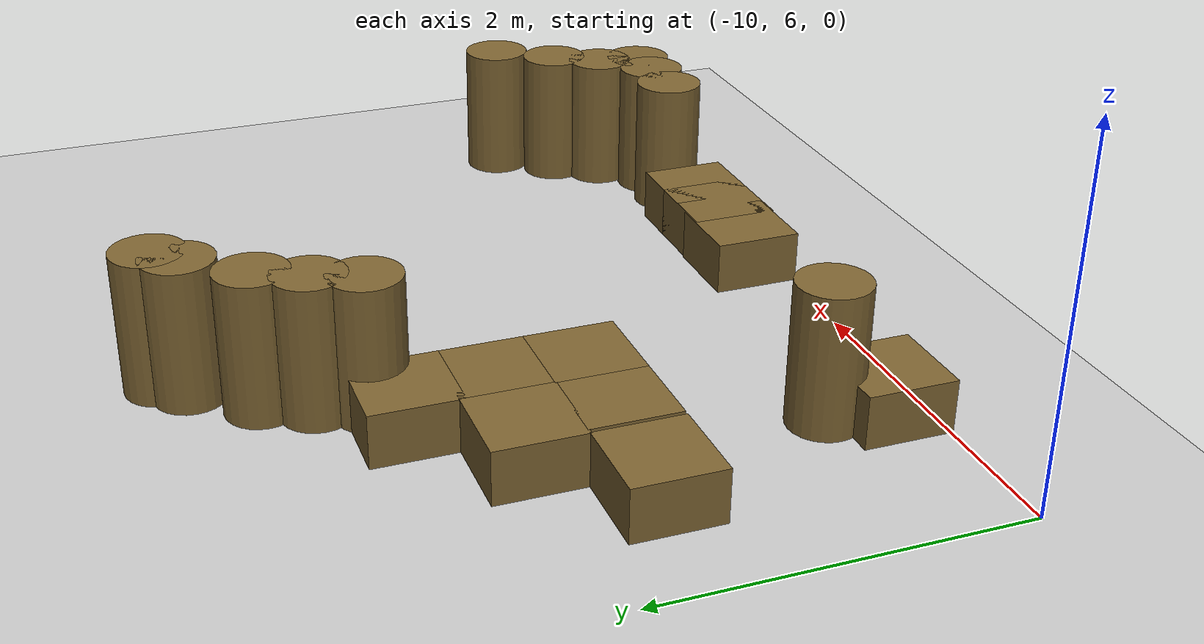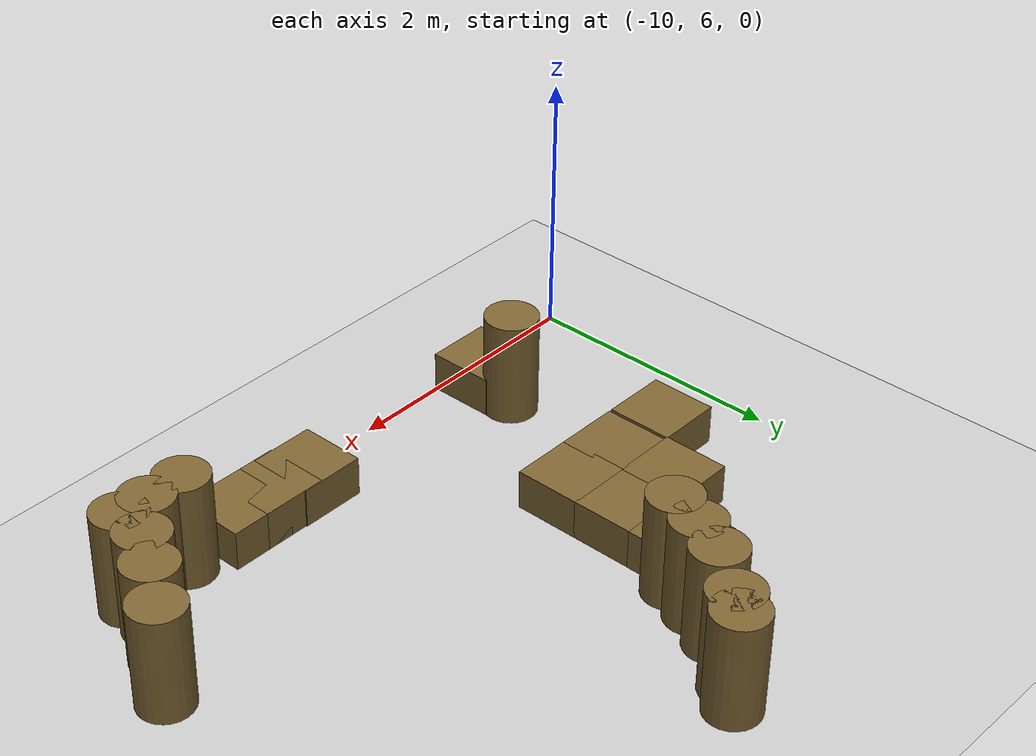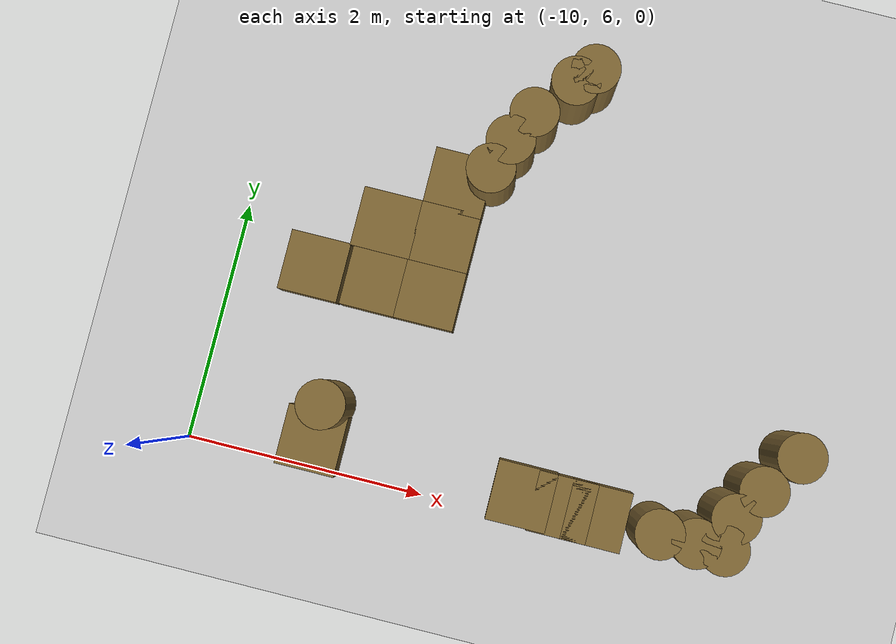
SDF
<sdf version="1.7">
 <world name="default">
  <model name="ground_plane">
   <static>1</static>
   <link name="link">
    <collision name="collision">
     <geometry><plane><normal>0 0 1</normal><size>100 100</size></plane></geometry>
     <surface><friction><ode><mu>100</mu><mu2>50</mu2></ode></friction></surface>
    </collision>
    <visual name="visual">
     <cast_shadows>0</cast_shadows>
     <geometry><plane><normal>0 0 1</normal><size>100 100</size></plane></geometry>
     <material>
      <script><uri>file://media/materials/scripts/gazebo.material</uri><name>Gazebo/Grey</name></script>
     </material>
    </visual>
   </link>
  </model>
  <model name="mini_box_clone_clone_2_clone">
   <link name="link">
    <inertial>
     <mass>1</mass>
     <inertia>
      <ixx>0.166667</ixx>
      <ixy>0</ixy>
      <ixz>0</ixz>
      <iyy>0.166667</iyy>
      <iyz>0</iyz>
      <izz>0.166667</izz>
     </inertia>
    </inertial>
    <visual name="visual">
     <geometry><box><size>0.5 0.5 0.3</size></box></geometry>
     <material>
      <script><name>Gazebo/Grey</name><uri>file://media/materials/scripts/gazebo.material</uri></script>
      <shader type="vertex"><normal_map>__default__</normal_map></shader>
      <ambient>0.5 0.4 0.2 1</ambient>
      <diffuse>0.7 0.7 0.7 1</diffuse>
      <specular>0.01 0.01 0.01 1</specular>
      <emissive>0 0 0 1</emissive>
     </material>
    </visual>
    <collision name="collision">
     <geometry><box><size>0.5 0.5 0.3</size></box></geometry>
     <surface>
      <friction>
       <ode><mu>1</mu><mu2>1</mu2><fdir1>0 0 0</fdir1><slip1>0</slip1><slip2>0</slip2></ode>
       <torsional>
        <coefficient>1</coefficient>
        <patch_radius>0</patch_radius>
        <surface_radius>0</surface_radius>
        <use_patch_radius>1</use_patch_radius>
        <ode><slip>0</slip></ode>
       </torsional>
      </friction>
      <bounce><restitution_coefficient>0</restitution_coefficient><threshold>1e+06</threshold></bounce>
      <contact>
       <collide_without_contact>0</collide_without_contact>
       <collide_without_contact_bitmask>1</collide_without_contact_bitmask>
       <collide_bitmask>1</collide_bitmask>
       <ode>
        <soft_cfm>0</soft_cfm>
        <soft_erp>0.2</soft_erp>
        <kp>1e+13</kp>
        <kd>1</kd>
        <max_vel>0.01</max_vel>
        <min_depth>0</min_depth>
       </ode>
       <bullet>
        <split_impulse>1</split_impulse>
        <split_impulse_penetration_threshold>-0.01</split_impulse_penetration_threshold>
        <soft_cfm>0</soft_cfm>
        <soft_erp>0.2</soft_erp>
        <kp>1e+13</kp>
        <kd>1</kd>
       </bullet>
      </contact>
     </surface>
    </collision>
   </link>
   <static>1</static>
   <pose>-7.18928 6.21457 0.15 0 -0 0</pose>
  </model>
  <model name="mini_cylinder_0_clone_0_clone_3">
   <link name="link">
    <inertial>
     <mass>1</mass>
     <inertia><ixx>0.145833</ixx><ixy>0</ixy><ixz>0</ixz><iyy>0.145833</iyy><iyz>0</iyz><izz>0.125</izz></inertia>
    </inertial>
    <visual name="visual">
     <geometry><cylinder><radius>0.2</radius><length>0.8</length></cylinder></geometry>
     <material>
      <script><name>Gazebo/Grey</name><uri>file://media/materials/scripts/gazebo.material</uri></script>
      <shader type="vertex"><normal_map>__default__</normal_map></shader>
      <ambient>0.5 0.4 0.2 1</ambient>
      <diffuse>0.7 0.7 0.7 1</diffuse>
      <specular>0.01 0.01 0.01 1</specular>
      <emissive>0 0 0 1</emissive>
     </material>
    </visual>
    <collision name="collision">
     <geometry><cylinder><radius>0.2</radius><length>0.8</length></cylinder></geometry>
     <surface>
      <friction>
       <ode><mu>1</mu><mu2>1</mu2><fdir1>0 0 0</fdir1><slip1>0</slip1><slip2>0</slip2></ode>
       <torsional>
        <coefficient>1</coefficient>
        <patch_radius>0</patch_radius>
        <surface_radius>0</surface_radius>
        <use_patch_radius>1</use_patch_radius>
        <ode><slip>0</slip></ode>
       </torsional>
      </friction>
      <bounce><restitution_coefficient>0</restitution_coefficient><threshold>1e+06</threshold></bounce>
      <contact>
       <collide_without_contact>0</collide_without_contact>
       <collide_without_contact_bitmask>1</collide_without_contact_bitmask>
       <collide_bitmask>1</collide_bitmask>
       <ode>
        <soft_cfm>0</soft_cfm>
        <soft_erp>0.2</soft_erp>
        <kp>1e+13</kp>
        <kd>1</kd>
        <max_vel>0.01</max_vel>
        <min_depth>0</min_depth>
       </ode>
       <bullet>
        <split_impulse>1</split_impulse>
        <split_impulse_penetration_threshold>-0.01</split_impulse_penetration_threshold>
        <soft_cfm>0</soft_cfm>
        <soft_erp>0.2</soft_erp>
        <kp>1e+13</kp>
        <kd>1</kd>
       </bullet>
      </contact>
     </surface>
    </collision>
   </link>
   <static>1</static>
   <pose>-8.90855 6.55503 0.4 0 -0 0</pose>
  </model>
  <model name="mini_box_clone_clone_3_clone_0_clone_0_clone_11">
   <link name="link">
    <inertial>
     <mass>1</mass>
     <inertia>
      <ixx>0.166667</ixx>
      <ixy>0</ixy>
      <ixz>0</ixz>
      <iyy>0.166667</iyy>
      <iyz>0</iyz>
      <izz>0.166667</izz>
     </inertia>
    </inertial>
    <visual name="visual">
     <geometry><box><size>0.5 0.5 0.3</size></box></geometry>
     <material>
      <script><name>Gazebo/Grey</name><uri>file://media/materials/scripts/gazebo.material</uri></script>
      <shader type="vertex"><normal_map>__default__</normal_map></shader>
      <ambient>0.5 0.4 0.2 1</ambient>
      <diffuse>0.7 0.7 0.7 1</diffuse>
      <specular>0.01 0.01 0.01 1</specular>
      <emissive>0 0 0 1</emissive>
     </material>
    </visual>
    <collision name="collision">
     <geometry><box><size>0.5 0.5 0.3</size></box></geometry>
     <surface>
      <friction>
       <ode><mu>1</mu><mu2>1</mu2><fdir1>0 0 0</fdir1><slip1>0</slip1><slip2>0</slip2></ode>
       <torsional>
        <coefficient>1</coefficient>
        <patch_radius>0</patch_radius>
        <surface_radius>0</surface_radius>
        <use_patch_radius>1</use_patch_radius>
        <ode><slip>0</slip></ode>
       </torsional>
      </friction>
      <bounce><restitution_coefficient>0</restitution_coefficient><threshold>1e+06</threshold></bounce>
      <contact>
       <collide_without_contact>0</collide_without_contact>
       <collide_without_contact_bitmask>1</collide_without_contact_bitmask>
       <collide_bitmask>1</collide_bitmask>
       <ode>
        <soft_cfm>0</soft_cfm>
        <soft_erp>0.2</soft_erp>
        <kp>1e+13</kp>
        <kd>1</kd>
        <max_vel>0.01</max_vel>
        <min_depth>0</min_depth>
       </ode>
       <bullet>
        <split_impulse>1</split_impulse>
        <split_impulse_penetration_threshold>-0.01</split_impulse_penetration_threshold>
        <soft_cfm>0</soft_cfm>
        <soft_erp>0.2</soft_erp>
        <kp>1e+13</kp>
        <kd>1</kd>
       </bullet>
      </contact>
     </surface>
    </collision>
   </link>
   <static>1</static>
   <pose>-8.32128 8.11628 0.15 0 -0 0</pose>
  </model>
  <model name="mini_box_clone_clone_3_clone_0_clone_0_clone_12">
   <link name="link">
    <inertial>
     <mass>1</mass>
     <inertia>
      <ixx>0.166667</ixx>
      <ixy>0</ixy>
      <ixz>0</ixz>
      <iyy>0.166667</iyy>
      <iyz>0</iyz>
      <izz>0.166667</izz>
     </inertia>
    </inertial>
    <visual name="visual">
     <geometry><box><size>0.5 0.5 0.3</size></box></geometry>
     <material>
      <script><name>Gazebo/Grey</name><uri>file://media/materials/scripts/gazebo.material</uri></script>
      <shader type="vertex"><normal_map>__default__</normal_map></shader>
      <ambient>0.5 0.4 0.2 1</ambient>
      <diffuse>0.7 0.7 0.7 1</diffuse>
      <specular>0.01 0.01 0.01 1</specular>
      <emissive>0 0 0 1</emissive>
     </material>
    </visual>
    <collision name="collision">
     <geometry><box><size>0.5 0.5 0.3</size></box></geometry>
     <surface>
      <friction>
       <ode><mu>1</mu><mu2>1</mu2><fdir1>0 0 0</fdir1><slip1>0</slip1><slip2>0</slip2></ode>
       <torsional>
        <coefficient>1</coefficient>
        <patch_radius>0</patch_radius>
        <surface_radius>0</surface_radius>
        <use_patch_radius>1</use_patch_radius>
        <ode><slip>0</slip></ode>
       </torsional>
      </friction>
      <bounce><restitution_coefficient>0</restitution_coefficient><threshold>1e+06</threshold></bounce>
      <contact>
       <collide_without_contact>0</collide_without_contact>
       <collide_without_contact_bitmask>1</collide_without_contact_bitmask>
       <collide_bitmask>1</collide_bitmask>
       <ode>
        <soft_cfm>0</soft_cfm>
        <soft_erp>0.2</soft_erp>
        <kp>1e+13</kp>
        <kd>1</kd>
        <max_vel>0.01</max_vel>
        <min_depth>0</min_depth>
       </ode>
       <bullet>
        <split_impulse>1</split_impulse>
        <split_impulse_penetration_threshold>-0.01</split_impulse_penetration_threshold>
        <soft_cfm>0</soft_cfm>
        <soft_erp>0.2</soft_erp>
        <kp>1e+13</kp>
        <kd>1</kd>
       </bullet>
      </contact>
     </surface>
    </collision>
   </link>
   <static>1</static>
   <pose>-8.32128 7.62502 0.15 0 -0 0</pose>
  </model>
  <model name="mini_box_clone_clone_3_clone_0_clone_0_clone_13">
   <link name="link">
    <inertial>
     <mass>1</mass>
     <inertia>
      <ixx>0.166667</ixx>
      <ixy>0</ixy>
      <ixz>0</ixz>
      <iyy>0.166667</iyy>
      <iyz>0</iyz>
      <izz>0.166667</izz>
     </inertia>
    </inertial>
    <visual name="visual">
     <geometry><box><size>0.5 0.5 0.3</size></box></geometry>
     <material>
      <script><name>Gazebo/Grey</name><uri>file://media/materials/scripts/gazebo.material</uri></script>
      <shader type="vertex"><normal_map>__default__</normal_map></shader>
      <ambient>0.5 0.4 0.2 1</ambient>
      <diffuse>0.7 0.7 0.7 1</diffuse>
      <specular>0.01 0.01 0.01 1</specular>
      <emissive>0 0 0 1</emissive>
     </material>
    </visual>
    <collision name="collision">
     <geometry><box><size>0.5 0.5 0.3</size></box></geometry>
     <surface>
      <friction>
       <ode><mu>1</mu><mu2>1</mu2><fdir1>0 0 0</fdir1><slip1>0</slip1><slip2>0</slip2></ode>
       <torsional>
        <coefficient>1</coefficient>
        <patch_radius>0</patch_radius>
        <surface_radius>0</surface_radius>
        <use_patch_radius>1</use_patch_radius>
        <ode><slip>0</slip></ode>
       </torsional>
      </friction>
      <bounce><restitution_coefficient>0</restitution_coefficient><threshold>1e+06</threshold></bounce>
      <contact>
       <collide_without_contact>0</collide_without_contact>
       <collide_without_contact_bitmask>1</collide_without_contact_bitmask>
       <collide_bitmask>1</collide_bitmask>
       <ode>
        <soft_cfm>0</soft_cfm>
        <soft_erp>0.2</soft_erp>
        <kp>1e+13</kp>
        <kd>1</kd>
        <max_vel>0.01</max_vel>
        <min_depth>0</min_depth>
       </ode>
       <bullet>
        <split_impulse>1</split_impulse>
        <split_impulse_penetration_threshold>-0.01</split_impulse_penetration_threshold>
        <soft_cfm>0</soft_cfm>
        <soft_erp>0.2</soft_erp>
        <kp>1e+13</kp>
        <kd>1</kd>
       </bullet>
      </contact>
     </surface>
    </collision>
   </link>
   <static>1</static>
   <pose>-8.81276 8.11628 0.15 0 -0 0</pose>
  </model>
  <model name="mini_box_clone_clone_3_clone_0_clone_0_clone_14">
   <link name="link">
    <inertial>
     <mass>1</mass>
     <inertia>
      <ixx>0.166667</ixx>
      <ixy>0</ixy>
      <ixz>0</ixz>
      <iyy>0.166667</iyy>
      <iyz>0</iyz>
      <izz>0.166667</izz>
     </inertia>
    </inertial>
    <visual name="visual">
     <geometry><box><size>0.5 0.5 0.3</size></box></geometry>
     <material>
      <script><name>Gazebo/Grey</name><uri>file://media/materials/scripts/gazebo.material</uri></script>
      <shader type="vertex"><normal_map>__default__</normal_map></shader>
      <ambient>0.5 0.4 0.2 1</ambient>
      <diffuse>0.7 0.7 0.7 1</diffuse>
      <specular>0.01 0.01 0.01 1</specular>
      <emissive>0 0 0 1</emissive>
     </material>
    </visual>
    <collision name="collision">
     <geometry><box><size>0.5 0.5 0.3</size></box></geometry>
     <surface>
      <friction>
       <ode><mu>1</mu><mu2>1</mu2><fdir1>0 0 0</fdir1><slip1>0</slip1><slip2>0</slip2></ode>
       <torsional>
        <coefficient>1</coefficient>
        <patch_radius>0</patch_radius>
        <surface_radius>0</surface_radius>
        <use_patch_radius>1</use_patch_radius>
        <ode><slip>0</slip></ode>
       </torsional>
      </friction>
      <bounce><restitution_coefficient>0</restitution_coefficient><threshold>1e+06</threshold></bounce>
      <contact>
       <collide_without_contact>0</collide_without_contact>
       <collide_without_contact_bitmask>1</collide_without_contact_bitmask>
       <collide_bitmask>1</collide_bitmask>
       <ode>
        <soft_cfm>0</soft_cfm>
        <soft_erp>0.2</soft_erp>
        <kp>1e+13</kp>
        <kd>1</kd>
        <max_vel>0.01</max_vel>
        <min_depth>0</min_depth>
       </ode>
       <bullet>
        <split_impulse>1</split_impulse>
        <split_impulse_penetration_threshold>-0.01</split_impulse_penetration_threshold>
        <soft_cfm>0</soft_cfm>
        <soft_erp>0.2</soft_erp>
        <kp>1e+13</kp>
        <kd>1</kd>
       </bullet>
      </contact>
     </surface>
    </collision>
   </link>
   <static>1</static>
   <pose>-8.78019 7.62502 0.15 0 -0 0</pose>
  </model>
  <model name="mini_box_clone_clone_3_clone_0_clone_0_clone_15">
   <link name="link">
    <inertial>
     <mass>1</mass>
     <inertia>
      <ixx>0.166667</ixx>
      <ixy>0</ixy>
      <ixz>0</ixz>
      <iyy>0.166667</iyy>
      <iyz>0</iyz>
      <izz>0.166667</izz>
     </inertia>
    </inertial>
    <visual name="visual">
     <geometry><box><size>0.5 0.5 0.3</size></box></geometry>
     <material>
      <script><name>Gazebo/Grey</name><uri>file://media/materials/scripts/gazebo.material</uri></script>
      <shader type="vertex"><normal_map>__default__</normal_map></shader>
      <ambient>0.5 0.4 0.2 1</ambient>
      <diffuse>0.7 0.7 0.7 1</diffuse>
      <specular>0.01 0.01 0.01 1</specular>
      <emissive>0 0 0 1</emissive>
     </material>
    </visual>
    <collision name="collision">
     <geometry><box><size>0.5 0.5 0.3</size></box></geometry>
     <surface>
      <friction>
       <ode><mu>1</mu><mu2>1</mu2><fdir1>0 0 0</fdir1><slip1>0</slip1><slip2>0</slip2></ode>
       <torsional>
        <coefficient>1</coefficient>
        <patch_radius>0</patch_radius>
        <surface_radius>0</surface_radius>
        <use_patch_radius>1</use_patch_radius>
        <ode><slip>0</slip></ode>
       </torsional>
      </friction>
      <bounce><restitution_coefficient>0</restitution_coefficient><threshold>1e+06</threshold></bounce>
      <contact>
       <collide_without_contact>0</collide_without_contact>
       <collide_without_contact_bitmask>1</collide_without_contact_bitmask>
       <collide_bitmask>1</collide_bitmask>
       <ode>
        <soft_cfm>0</soft_cfm>
        <soft_erp>0.2</soft_erp>
        <kp>1e+13</kp>
        <kd>1</kd>
        <max_vel>0.01</max_vel>
        <min_depth>0</min_depth>
       </ode>
       <bullet>
        <split_impulse>1</split_impulse>
        <split_impulse_penetration_threshold>-0.01</split_impulse_penetration_threshold>
        <soft_cfm>0</soft_cfm>
        <soft_erp>0.2</soft_erp>
        <kp>1e+13</kp>
        <kd>1</kd>
       </bullet>
      </contact>
     </surface>
    </collision>
   </link>
   <static>1</static>
   <pose>-9.30423 7.62502 0.15 0 -0 0</pose>
  </model>
  <model name="mini_box_clone_clone_0_clone_1">
   <link name="link">
    <inertial>
     <mass>1</mass>
     <inertia>
      <ixx>0.166667</ixx>
      <ixy>0</ixy>
      <ixz>0</ixz>
      <iyy>0.166667</iyy>
      <iyz>0</iyz>
      <izz>0.166667</izz>
     </inertia>
    </inertial>
    <visual name="visual">
     <geometry><box><size>0.5 0.5 0.3</size></box></geometry>
     <material>
      <script><name>Gazebo/Grey</name><uri>file://media/materials/scripts/gazebo.material</uri></script>
      <shader type="vertex"><normal_map>__default__</normal_map></shader>
      <ambient>0.5 0.4 0.2 1</ambient>
      <diffuse>0.7 0.7 0.7 1</diffuse>
      <specular>0.01 0.01 0.01 1</specular>
      <emissive>0 0 0 1</emissive>
     </material>
    </visual>
    <collision name="collision">
     <geometry><box><size>0.5 0.5 0.3</size></box></geometry>
     <surface>
      <friction>
       <ode><mu>1</mu><mu2>1</mu2><fdir1>0 0 0</fdir1><slip1>0</slip1><slip2>0</slip2></ode>
       <torsional>
        <coefficient>1</coefficient>
        <patch_radius>0</patch_radius>
        <surface_radius>0</surface_radius>
        <use_patch_radius>1</use_patch_radius>
        <ode><slip>0</slip></ode>
       </torsional>
      </friction>
      <bounce><restitution_coefficient>0</restitution_coefficient><threshold>1e+06</threshold></bounce>
      <contact>
       <collide_without_contact>0</collide_without_contact>
       <collide_without_contact_bitmask>1</collide_without_contact_bitmask>
       <collide_bitmask>1</collide_bitmask>
       <ode>
        <soft_cfm>0</soft_cfm>
        <soft_erp>0.2</soft_erp>
        <kp>1e+13</kp>
        <kd>1</kd>
        <max_vel>0.01</max_vel>
        <min_depth>0</min_depth>
       </ode>
       <bullet>
        <split_impulse>1</split_impulse>
        <split_impulse_penetration_threshold>-0.01</split_impulse_penetration_threshold>
        <soft_cfm>0</soft_cfm>
        <soft_erp>0.2</soft_erp>
        <kp>1e+13</kp>
        <kd>1</kd>
       </bullet>
      </contact>
     </surface>
    </collision>
   </link>
   <static>1</static>
   <pose>-8.96737 6.23592 0.15 0 -0 0</pose>
  </model>
  <model name="mini_box_clone_clone_0_clone_4">
   <link name="link">
    <inertial>
     <mass>1</mass>
     <inertia>
      <ixx>0.166667</ixx>
      <ixy>0</ixy>
      <ixz>0</ixz>
      <iyy>0.166667</iyy>
      <iyz>0</iyz>
      <izz>0.166667</izz>
     </inertia>
    </inertial>
    <visual name="visual">
     <geometry><box><size>0.5 0.5 0.3</size></box></geometry>
     <material>
      <script><name>Gazebo/Grey</name><uri>file://media/materials/scripts/gazebo.material</uri></script>
      <shader type="vertex"><normal_map>__default__</normal_map></shader>
      <ambient>0.5 0.4 0.2 1</ambient>
      <diffuse>0.7 0.7 0.7 1</diffuse>
      <specular>0.01 0.01 0.01 1</specular>
      <emissive>0 0 0 1</emissive>
     </material>
    </visual>
    <collision name="collision">
     <geometry><box><size>0.5 0.5 0.3</size></box></geometry>
     <surface>
      <friction>
       <ode><mu>1</mu><mu2>1</mu2><fdir1>0 0 0</fdir1><slip1>0</slip1><slip2>0</slip2></ode>
       <torsional>
        <coefficient>1</coefficient>
        <patch_radius>0</patch_radius>
        <surface_radius>0</surface_radius>
        <use_patch_radius>1</use_patch_radius>
        <ode><slip>0</slip></ode>
       </torsional>
      </friction>
      <bounce><restitution_coefficient>0</restitution_coefficient><threshold>1e+06</threshold></bounce>
      <contact>
       <collide_without_contact>0</collide_without_contact>
       <collide_without_contact_bitmask>1</collide_without_contact_bitmask>
       <collide_bitmask>1</collide_bitmask>
       <ode>
        <soft_cfm>0</soft_cfm>
        <soft_erp>0.2</soft_erp>
        <kp>1e+13</kp>
        <kd>1</kd>
        <max_vel>0.01</max_vel>
        <min_depth>0</min_depth>
       </ode>
       <bullet>
        <split_impulse>1</split_impulse>
        <split_impulse_penetration_threshold>-0.01</split_impulse_penetration_threshold>
        <soft_cfm>0</soft_cfm>
        <soft_erp>0.2</soft_erp>
        <kp>1e+13</kp>
        <kd>1</kd>
       </bullet>
      </contact>
     </surface>
    </collision>
   </link>
   <static>1</static>
   <pose>-8.32006 8.57869 0.15 0 -0 0</pose>
  </model>
  <model name="mini_box_clone_clone_0_clone_5">
   <link name="link">
    <inertial>
     <mass>1</mass>
     <inertia>
      <ixx>0.166667</ixx>
      <ixy>0</ixy>
      <ixz>0</ixz>
      <iyy>0.166667</iyy>
      <iyz>0</iyz>
      <izz>0.166667</izz>
     </inertia>
    </inertial>
    <visual name="visual">
     <geometry><box><size>0.5 0.5 0.3</size></box></geometry>
     <material>
      <script><name>Gazebo/Grey</name><uri>file://media/materials/scripts/gazebo.material</uri></script>
      <shader type="vertex"><normal_map>__default__</normal_map></shader>
      <ambient>0.5 0.4 0.2 1</ambient>
      <diffuse>0.7 0.7 0.7 1</diffuse>
      <specular>0.01 0.01 0.01 1</specular>
      <emissive>0 0 0 1</emissive>
     </material>
    </visual>
    <collision name="collision">
     <geometry><box><size>0.5 0.5 0.3</size></box></geometry>
     <surface>
      <friction>
       <ode><mu>1</mu><mu2>1</mu2><fdir1>0 0 0</fdir1><slip1>0</slip1><slip2>0</slip2></ode>
       <torsional>
        <coefficient>1</coefficient>
        <patch_radius>0</patch_radius>
        <surface_radius>0</surface_radius>
        <use_patch_radius>1</use_patch_radius>
        <ode><slip>0</slip></ode>
       </torsional>
      </friction>
      <bounce><restitution_coefficient>0</restitution_coefficient><threshold>1e+06</threshold></bounce>
      <contact>
       <collide_without_contact>0</collide_without_contact>
       <collide_without_contact_bitmask>1</collide_without_contact_bitmask>
       <collide_bitmask>1</collide_bitmask>
       <ode>
        <soft_cfm>0</soft_cfm>
        <soft_erp>0.2</soft_erp>
        <kp>1e+13</kp>
        <kd>1</kd>
        <max_vel>0.01</max_vel>
        <min_depth>0</min_depth>
       </ode>
       <bullet>
        <split_impulse>1</split_impulse>
        <split_impulse_penetration_threshold>-0.01</split_impulse_penetration_threshold>
        <soft_cfm>0</soft_cfm>
        <soft_erp>0.2</soft_erp>
        <kp>1e+13</kp>
        <kd>1</kd>
       </bullet>
      </contact>
     </surface>
    </collision>
   </link>
   <static>1</static>
   <pose>-6.84739 6.20672 0.15 0 -0 0</pose>
  </model>
  <model name="mini_box_clone_clone_0_clone_6">
   <link name="link">
    <inertial>
     <mass>1</mass>
     <inertia>
      <ixx>0.166667</ixx>
      <ixy>0</ixy>
      <ixz>0</ixz>
      <iyy>0.166667</iyy>
      <iyz>0</iyz>
      <izz>0.166667</izz>
     </inertia>
    </inertial>
    <visual name="visual">
     <geometry><box><size>0.5 0.5 0.3</size></box></geometry>
     <material>
      <script><name>Gazebo/Grey</name><uri>file://media/materials/scripts/gazebo.material</uri></script>
      <shader type="vertex"><normal_map>__default__</normal_map></shader>
      <ambient>0.5 0.4 0.2 1</ambient>
      <diffuse>0.7 0.7 0.7 1</diffuse>
      <specular>0.01 0.01 0.01 1</specular>
      <emissive>0 0 0 1</emissive>
     </material>
    </visual>
    <collision name="collision">
     <geometry><box><size>0.5 0.5 0.3</size></box></geometry>
     <surface>
      <friction>
       <ode><mu>1</mu><mu2>1</mu2><fdir1>0 0 0</fdir1><slip1>0</slip1><slip2>0</slip2></ode>
       <torsional>
        <coefficient>1</coefficient>
        <patch_radius>0</patch_radius>
        <surface_radius>0</surface_radius>
        <use_patch_radius>1</use_patch_radius>
        <ode><slip>0</slip></ode>
       </torsional>
      </friction>
      <bounce><restitution_coefficient>0</restitution_coefficient><threshold>1e+06</threshold></bounce>
      <contact>
       <collide_without_contact>0</collide_without_contact>
       <collide_without_contact_bitmask>1</collide_without_contact_bitmask>
       <collide_bitmask>1</collide_bitmask>
       <ode>
        <soft_cfm>0</soft_cfm>
        <soft_erp>0.2</soft_erp>
        <kp>1e+13</kp>
        <kd>1</kd>
        <max_vel>0.01</max_vel>
        <min_depth>0</min_depth>
       </ode>
       <bullet>
        <split_impulse>1</split_impulse>
        <split_impulse_penetration_threshold>-0.01</split_impulse_penetration_threshold>
        <soft_cfm>0</soft_cfm>
        <soft_erp>0.2</soft_erp>
        <kp>1e+13</kp>
        <kd>1</kd>
       </bullet>
      </contact>
     </surface>
    </collision>
   </link>
   <static>1</static>
   <pose>-6.56037 6.20672 0.15 0 -0 0</pose>
  </model>
  <model name="mini_cylinder_0_clone_0_clone_20">
   <link name="link">
    <inertial>
     <mass>1</mass>
     <inertia><ixx>0.145833</ixx><ixy>0</ixy><ixz>0</ixz><iyy>0.145833</iyy><iyz>0</iyz><izz>0.125</izz></inertia>
    </inertial>
    <visual name="visual">
     <geometry><cylinder><radius>0.2</radius><length>0.8</length></cylinder></geometry>
     <material>
      <script><name>Gazebo/Grey</name><uri>file://media/materials/scripts/gazebo.material</uri></script>
      <shader type="vertex"><normal_map>__default__</normal_map></shader>
      <ambient>0.5 0.4 0.2 1</ambient>
      <diffuse>0.7 0.7 0.7 1</diffuse>
      <specular>0.01 0.01 0.01 1</specular>
      <emissive>0 0 0 1</emissive>
     </material>
    </visual>
    <collision name="collision">
     <geometry><cylinder><radius>0.2</radius><length>0.8</length></cylinder></geometry>
     <surface>
      <friction>
       <ode><mu>1</mu><mu2>1</mu2><fdir1>0 0 0</fdir1><slip1>0</slip1><slip2>0</slip2></ode>
       <torsional>
        <coefficient>1</coefficient>
        <patch_radius>0</patch_radius>
        <surface_radius>0</surface_radius>
        <use_patch_radius>1</use_patch_radius>
        <ode><slip>0</slip></ode>
       </torsional>
      </friction>
      <bounce><restitution_coefficient>0</restitution_coefficient><threshold>1e+06</threshold></bounce>
      <contact>
       <collide_without_contact>0</collide_without_contact>
       <collide_without_contact_bitmask>1</collide_without_contact_bitmask>
       <collide_bitmask>1</collide_bitmask>
       <ode>
        <soft_cfm>0</soft_cfm>
        <soft_erp>0.2</soft_erp>
        <kp>1e+13</kp>
        <kd>1</kd>
        <max_vel>0.01</max_vel>
        <min_depth>0</min_depth>
       </ode>
       <bullet>
        <split_impulse>1</split_impulse>
        <split_impulse_penetration_threshold>-0.01</split_impulse_penetration_threshold>
        <soft_cfm>0</soft_cfm>
        <soft_erp>0.2</soft_erp>
        <kp>1e+13</kp>
        <kd>1</kd>
       </bullet>
      </contact>
     </surface>
    </collision>
   </link>
   <static>1</static>
   <pose>-6.09191 6.22401 0.4 0 -0 0</pose>
  </model>
  <model name="mini_cylinder_0_clone_0_clone_21">
   <link name="link">
    <inertial>
     <mass>1</mass>
     <inertia><ixx>0.145833</ixx><ixy>0</ixy><ixz>0</ixz><iyy>0.145833</iyy><iyz>0</iyz><izz>0.125</izz></inertia>
    </inertial>
    <visual name="visual">
     <geometry><cylinder><radius>0.2</radius><length>0.8</length></cylinder></geometry>
     <material>
      <script><name>Gazebo/Grey</name><uri>file://media/materials/scripts/gazebo.material</uri></script>
      <shader type="vertex"><normal_map>__default__</normal_map></shader>
      <ambient>0.5 0.4 0.2 1</ambient>
      <diffuse>0.7 0.7 0.7 1</diffuse>
      <specular>0.01 0.01 0.01 1</specular>
      <emissive>0 0 0 1</emissive>
     </material>
    </visual>
    <collision name="collision">
     <geometry><cylinder><radius>0.2</radius><length>0.8</length></cylinder></geometry>
     <surface>
      <friction>
       <ode><mu>1</mu><mu2>1</mu2><fdir1>0 0 0</fdir1><slip1>0</slip1><slip2>0</slip2></ode>
       <torsional>
        <coefficient>1</coefficient>
        <patch_radius>0</patch_radius>
        <surface_radius>0</surface_radius>
        <use_patch_radius>1</use_patch_radius>
        <ode><slip>0</slip></ode>
       </torsional>
      </friction>
      <bounce><restitution_coefficient>0</restitution_coefficient><threshold>1e+06</threshold></bounce>
      <contact>
       <collide_without_contact>0</collide_without_contact>
       <collide_without_contact_bitmask>1</collide_without_contact_bitmask>
       <collide_bitmask>1</collide_bitmask>
       <ode>
        <soft_cfm>0</soft_cfm>
        <soft_erp>0.2</soft_erp>
        <kp>1e+13</kp>
        <kd>1</kd>
        <max_vel>0.01</max_vel>
        <min_depth>0</min_depth>
       </ode>
       <bullet>
        <split_impulse>1</split_impulse>
        <split_impulse_penetration_threshold>-0.01</split_impulse_penetration_threshold>
        <soft_cfm>0</soft_cfm>
        <soft_erp>0.2</soft_erp>
        <kp>1e+13</kp>
        <kd>1</kd>
       </bullet>
      </contact>
     </surface>
    </collision>
   </link>
   <static>1</static>
   <pose>-5.79996 6.22401 0.4 0 -0 0</pose>
  </model>
  <model name="mini_cylinder_0_clone_0_clone_22">
   <link name="link">
    <inertial>
     <mass>1</mass>
     <inertia><ixx>0.145833</ixx><ixy>0</ixy><ixz>0</ixz><iyy>0.145833</iyy><iyz>0</iyz><izz>0.125</izz></inertia>
    </inertial>
    <visual name="visual">
     <geometry><cylinder><radius>0.2</radius><length>0.8</length></cylinder></geometry>
     <material>
      <script><name>Gazebo/Grey</name><uri>file://media/materials/scripts/gazebo.material</uri></script>
      <shader type="vertex"><normal_map>__default__</normal_map></shader>
      <ambient>0.5 0.4 0.2 1</ambient>
      <diffuse>0.7 0.7 0.7 1</diffuse>
      <specular>0.01 0.01 0.01 1</specular>
      <emissive>0 0 0 1</emissive>
     </material>
    </visual>
    <collision name="collision">
     <geometry><cylinder><radius>0.2</radius><length>0.8</length></cylinder></geometry>
     <surface>
      <friction>
       <ode><mu>1</mu><mu2>1</mu2><fdir1>0 0 0</fdir1><slip1>0</slip1><slip2>0</slip2></ode>
       <torsional>
        <coefficient>1</coefficient>
        <patch_radius>0</patch_radius>
        <surface_radius>0</surface_radius>
        <use_patch_radius>1</use_patch_radius>
        <ode><slip>0</slip></ode>
       </torsional>
      </friction>
      <bounce><restitution_coefficient>0</restitution_coefficient><threshold>1e+06</threshold></bounce>
      <contact>
       <collide_without_contact>0</collide_without_contact>
       <collide_without_contact_bitmask>1</collide_without_contact_bitmask>
       <collide_bitmask>1</collide_bitmask>
       <ode>
        <soft_cfm>0</soft_cfm>
        <soft_erp>0.2</soft_erp>
        <kp>1e+13</kp>
        <kd>1</kd>
        <max_vel>0.01</max_vel>
        <min_depth>0</min_depth>
       </ode>
       <bullet>
        <split_impulse>1</split_impulse>
        <split_impulse_penetration_threshold>-0.01</split_impulse_penetration_threshold>
        <soft_cfm>0</soft_cfm>
        <soft_erp>0.2</soft_erp>
        <kp>1e+13</kp>
        <kd>1</kd>
       </bullet>
      </contact>
     </surface>
    </collision>
   </link>
   <static>1</static>
   <pose>-5.57308 6.22401 0.4 0 -0 0</pose>
  </model>
  <model name="mini_cylinder_0_clone_0_clone_23">
   <link name="link">
    <inertial>
     <mass>1</mass>
     <inertia><ixx>0.145833</ixx><ixy>0</ixy><ixz>0</ixz><iyy>0.145833</iyy><iyz>0</iyz><izz>0.125</izz></inertia>
    </inertial>
    <visual name="visual">
     <geometry><cylinder><radius>0.2</radius><length>0.8</length></cylinder></geometry>
     <material>
      <script><name>Gazebo/Grey</name><uri>file://media/materials/scripts/gazebo.material</uri></script>
      <shader type="vertex"><normal_map>__default__</normal_map></shader>
      <ambient>0.5 0.4 0.2 1</ambient>
      <diffuse>0.7 0.7 0.7 1</diffuse>
      <specular>0.01 0.01 0.01 1</specular>
      <emissive>0 0 0 1</emissive>
     </material>
    </visual>
    <collision name="collision">
     <geometry><cylinder><radius>0.2</radius><length>0.8</length></cylinder></geometry>
     <surface>
      <friction>
       <ode><mu>1</mu><mu2>1</mu2><fdir1>0 0 0</fdir1><slip1>0</slip1><slip2>0</slip2></ode>
       <torsional>
        <coefficient>1</coefficient>
        <patch_radius>0</patch_radius>
        <surface_radius>0</surface_radius>
        <use_patch_radius>1</use_patch_radius>
        <ode><slip>0</slip></ode>
       </torsional>
      </friction>
      <bounce><restitution_coefficient>0</restitution_coefficient><threshold>1e+06</threshold></bounce>
      <contact>
       <collide_without_contact>0</collide_without_contact>
       <collide_without_contact_bitmask>1</collide_without_contact_bitmask>
       <collide_bitmask>1</collide_bitmask>
       <ode>
        <soft_cfm>0</soft_cfm>
        <soft_erp>0.2</soft_erp>
        <kp>1e+13</kp>
        <kd>1</kd>
        <max_vel>0.01</max_vel>
        <min_depth>0</min_depth>
       </ode>
       <bullet>
        <split_impulse>1</split_impulse>
        <split_impulse_penetration_threshold>-0.01</split_impulse_penetration_threshold>
        <soft_cfm>0</soft_cfm>
        <soft_erp>0.2</soft_erp>
        <kp>1e+13</kp>
        <kd>1</kd>
       </bullet>
      </contact>
     </surface>
    </collision>
   </link>
   <static>1</static>
   <pose>-5.54076 6.48392 0.4 0 -0 0</pose>
  </model>
  <model name="mini_cylinder_0_clone_0_clone_24">
   <link name="link">
    <inertial>
     <mass>1</mass>
     <inertia><ixx>0.145833</ixx><ixy>0</ixy><ixz>0</ixz><iyy>0.145833</iyy><iyz>0</iyz><izz>0.125</izz></inertia>
    </inertial>
    <visual name="visual">
     <geometry><cylinder><radius>0.2</radius><length>0.8</length></cylinder></geometry>
     <material>
      <script><name>Gazebo/Grey</name><uri>file://media/materials/scripts/gazebo.material</uri></script>
      <shader type="vertex"><normal_map>__default__</normal_map></shader>
      <ambient>0.5 0.4 0.2 1</ambient>
      <diffuse>0.7 0.7 0.7 1</diffuse>
      <specular>0.01 0.01 0.01 1</specular>
      <emissive>0 0 0 1</emissive>
     </material>
    </visual>
    <collision name="collision">
     <geometry><cylinder><radius>0.2</radius><length>0.8</length></cylinder></geometry>
     <surface>
      <friction>
       <ode><mu>1</mu><mu2>1</mu2><fdir1>0 0 0</fdir1><slip1>0</slip1><slip2>0</slip2></ode>
       <torsional>
        <coefficient>1</coefficient>
        <patch_radius>0</patch_radius>
        <surface_radius>0</surface_radius>
        <use_patch_radius>1</use_patch_radius>
        <ode><slip>0</slip></ode>
       </torsional>
      </friction>
      <bounce><restitution_coefficient>0</restitution_coefficient><threshold>1e+06</threshold></bounce>
      <contact>
       <collide_without_contact>0</collide_without_contact>
       <collide_without_contact_bitmask>1</collide_without_contact_bitmask>
       <collide_bitmask>1</collide_bitmask>
       <ode>
        <soft_cfm>0</soft_cfm>
        <soft_erp>0.2</soft_erp>
        <kp>1e+13</kp>
        <kd>1</kd>
        <max_vel>0.01</max_vel>
        <min_depth>0</min_depth>
       </ode>
       <bullet>
        <split_impulse>1</split_impulse>
        <split_impulse_penetration_threshold>-0.01</split_impulse_penetration_threshold>
        <soft_cfm>0</soft_cfm>
        <soft_erp>0.2</soft_erp>
        <kp>1e+13</kp>
        <kd>1</kd>
       </bullet>
      </contact>
     </surface>
    </collision>
   </link>
   <static>1</static>
   <pose>-5.37894 6.74312 0.4 0 -0 0</pose>
  </model>
  <model name="mini_cylinder_0_clone_0_clone_25">
   <link name="link">
    <inertial>
     <mass>1</mass>
     <inertia><ixx>0.145833</ixx><ixy>0</ixy><ixz>0</ixz><iyy>0.145833</iyy><iyz>0</iyz><izz>0.125</izz></inertia>
    </inertial>
    <visual name="visual">
     <geometry><cylinder><radius>0.2</radius><length>0.8</length></cylinder></geometry>
     <material>
      <script><name>Gazebo/Grey</name><uri>file://media/materials/scripts/gazebo.material</uri></script>
      <shader type="vertex"><normal_map>__default__</normal_map></shader>
      <ambient>0.5 0.4 0.2 1</ambient>
      <diffuse>0.7 0.7 0.7 1</diffuse>
      <specular>0.01 0.01 0.01 1</specular>
      <emissive>0 0 0 1</emissive>
     </material>
    </visual>
    <collision name="collision">
     <geometry><cylinder><radius>0.2</radius><length>0.8</length></cylinder></geometry>
     <surface>
      <friction>
       <ode><mu>1</mu><mu2>1</mu2><fdir1>0 0 0</fdir1><slip1>0</slip1><slip2>0</slip2></ode>
       <torsional>
        <coefficient>1</coefficient>
        <patch_radius>0</patch_radius>
        <surface_radius>0</surface_radius>
        <use_patch_radius>1</use_patch_radius>
        <ode><slip>0</slip></ode>
       </torsional>
      </friction>
      <bounce><restitution_coefficient>0</restitution_coefficient><threshold>1e+06</threshold></bounce>
      <contact>
       <collide_without_contact>0</collide_without_contact>
       <collide_without_contact_bitmask>1</collide_without_contact_bitmask>
       <collide_bitmask>1</collide_bitmask>
       <ode>
        <soft_cfm>0</soft_cfm>
        <soft_erp>0.2</soft_erp>
        <kp>1e+13</kp>
        <kd>1</kd>
        <max_vel>0.01</max_vel>
        <min_depth>0</min_depth>
       </ode>
       <bullet>
        <split_impulse>1</split_impulse>
        <split_impulse_penetration_threshold>-0.01</split_impulse_penetration_threshold>
        <soft_cfm>0</soft_cfm>
        <soft_erp>0.2</soft_erp>
        <kp>1e+13</kp>
        <kd>1</kd>
       </bullet>
      </contact>
     </surface>
    </collision>
   </link>
   <static>1</static>
   <pose>-5.15206 7.06718 0.4 0 -0 0</pose>
  </model>
  <model name="mini_cylinder_0_clone_0_clone_26">
   <link name="link">
    <inertial>
     <mass>1</mass>
     <inertia><ixx>0.145833</ixx><ixy>0</ixy><ixz>0</ixz><iyy>0.145833</iyy><iyz>0</iyz><izz>0.125</izz></inertia>
    </inertial>
    <visual name="visual">
     <geometry><cylinder><radius>0.2</radius><length>0.8</length></cylinder></geometry>
     <material>
      <script><name>Gazebo/Grey</name><uri>file://media/materials/scripts/gazebo.material</uri></script>
      <shader type="vertex"><normal_map>__default__</normal_map></shader>
      <ambient>0.5 0.4 0.2 1</ambient>
      <diffuse>0.7 0.7 0.7 1</diffuse>
      <specular>0.01 0.01 0.01 1</specular>
      <emissive>0 0 0 1</emissive>
     </material>
    </visual>
    <collision name="collision">
     <geometry><cylinder><radius>0.2</radius><length>0.8</length></cylinder></geometry>
     <surface>
      <friction>
       <ode><mu>1</mu><mu2>1</mu2><fdir1>0 0 0</fdir1><slip1>0</slip1><slip2>0</slip2></ode>
       <torsional>
        <coefficient>1</coefficient>
        <patch_radius>0</patch_radius>
        <surface_radius>0</surface_radius>
        <use_patch_radius>1</use_patch_radius>
        <ode><slip>0</slip></ode>
       </torsional>
      </friction>
      <bounce><restitution_coefficient>0</restitution_coefficient><threshold>1e+06</threshold></bounce>
      <contact>
       <collide_without_contact>0</collide_without_contact>
       <collide_without_contact_bitmask>1</collide_without_contact_bitmask>
       <collide_bitmask>1</collide_bitmask>
       <ode>
        <soft_cfm>0</soft_cfm>
        <soft_erp>0.2</soft_erp>
        <kp>1e+13</kp>
        <kd>1</kd>
        <max_vel>0.01</max_vel>
        <min_depth>0</min_depth>
       </ode>
       <bullet>
        <split_impulse>1</split_impulse>
        <split_impulse_penetration_threshold>-0.01</split_impulse_penetration_threshold>
        <soft_cfm>0</soft_cfm>
        <soft_erp>0.2</soft_erp>
        <kp>1e+13</kp>
        <kd>1</kd>
       </bullet>
      </contact>
     </surface>
    </collision>
   </link>
   <static>1</static>
   <pose>-8.06899 8.68788 0.4 0 -0 0</pose>
  </model>
  <model name="mini_cylinder_0_clone_0_clone_27">
   <link name="link">
    <inertial>
     <mass>1</mass>
     <inertia><ixx>0.145833</ixx><ixy>0</ixy><ixz>0</ixz><iyy>0.145833</iyy><iyz>0</iyz><izz>0.125</izz></inertia>
    </inertial>
    <visual name="visual">
     <geometry><cylinder><radius>0.2</radius><length>0.8</length></cylinder></geometry>
     <material>
      <script><name>Gazebo/Grey</name><uri>file://media/materials/scripts/gazebo.material</uri></script>
      <shader type="vertex"><normal_map>__default__</normal_map></shader>
      <ambient>0.5 0.4 0.2 1</ambient>
      <diffuse>0.7 0.7 0.7 1</diffuse>
      <specular>0.01 0.01 0.01 1</specular>
      <emissive>0 0 0 1</emissive>
     </material>
    </visual>
    <collision name="collision">
     <geometry><cylinder><radius>0.2</radius><length>0.8</length></cylinder></geometry>
     <surface>
      <friction>
       <ode><mu>1</mu><mu2>1</mu2><fdir1>0 0 0</fdir1><slip1>0</slip1><slip2>0</slip2></ode>
       <torsional>
        <coefficient>1</coefficient>
        <patch_radius>0</patch_radius>
        <surface_radius>0</surface_radius>
        <use_patch_radius>1</use_patch_radius>
        <ode><slip>0</slip></ode>
       </torsional>
      </friction>
      <bounce><restitution_coefficient>0</restitution_coefficient><threshold>1e+06</threshold></bounce>
      <contact>
       <collide_without_contact>0</collide_without_contact>
       <collide_without_contact_bitmask>1</collide_without_contact_bitmask>
       <collide_bitmask>1</collide_bitmask>
       <ode>
        <soft_cfm>0</soft_cfm>
        <soft_erp>0.2</soft_erp>
        <kp>1e+13</kp>
        <kd>1</kd>
        <max_vel>0.01</max_vel>
        <min_depth>0</min_depth>
       </ode>
       <bullet>
        <split_impulse>1</split_impulse>
        <split_impulse_penetration_threshold>-0.01</split_impulse_penetration_threshold>
        <soft_cfm>0</soft_cfm>
        <soft_erp>0.2</soft_erp>
        <kp>1e+13</kp>
        <kd>1</kd>
       </bullet>
      </contact>
     </surface>
    </collision>
   </link>
   <static>1</static>
   <pose>-7.9714 8.94709 0.4 0 -0 0</pose>
  </model>
  <model name="mini_cylinder_0_clone_0_clone_28">
   <link name="link">
    <inertial>
     <mass>1</mass>
     <inertia><ixx>0.145833</ixx><ixy>0</ixy><ixz>0</ixz><iyy>0.145833</iyy><iyz>0</iyz><izz>0.125</izz></inertia>
    </inertial>
    <visual name="visual">
     <geometry><cylinder><radius>0.2</radius><length>0.8</length></cylinder></geometry>
     <material>
      <script><name>Gazebo/Grey</name><uri>file://media/materials/scripts/gazebo.material</uri></script>
      <shader type="vertex"><normal_map>__default__</normal_map></shader>
      <ambient>0.5 0.4 0.2 1</ambient>
      <diffuse>0.7 0.7 0.7 1</diffuse>
      <specular>0.01 0.01 0.01 1</specular>
      <emissive>0 0 0 1</emissive>
     </material>
    </visual>
    <collision name="collision">
     <geometry><cylinder><radius>0.2</radius><length>0.8</length></cylinder></geometry>
     <surface>
      <friction>
       <ode><mu>1</mu><mu2>1</mu2><fdir1>0 0 0</fdir1><slip1>0</slip1><slip2>0</slip2></ode>
       <torsional>
        <coefficient>1</coefficient>
        <patch_radius>0</patch_radius>
        <surface_radius>0</surface_radius>
        <use_patch_radius>1</use_patch_radius>
        <ode><slip>0</slip></ode>
       </torsional>
      </friction>
      <bounce><restitution_coefficient>0</restitution_coefficient><threshold>1e+06</threshold></bounce>
      <contact>
       <collide_without_contact>0</collide_without_contact>
       <collide_without_contact_bitmask>1</collide_without_contact_bitmask>
       <collide_bitmask>1</collide_bitmask>
       <ode>
        <soft_cfm>0</soft_cfm>
        <soft_erp>0.2</soft_erp>
        <kp>1e+13</kp>
        <kd>1</kd>
        <max_vel>0.01</max_vel>
        <min_depth>0</min_depth>
       </ode>
       <bullet>
        <split_impulse>1</split_impulse>
        <split_impulse_penetration_threshold>-0.01</split_impulse_penetration_threshold>
        <soft_cfm>0</soft_cfm>
        <soft_erp>0.2</soft_erp>
        <kp>1e+13</kp>
        <kd>1</kd>
       </bullet>
      </contact>
     </surface>
    </collision>
   </link>
   <static>1</static>
   <pose>-7.8416 9.20629 0.4 0 -0 0</pose>
  </model>
  <model name="mini_cylinder_0_clone_0_clone_29">
   <link name="link">
    <inertial>
     <mass>1</mass>
     <inertia><ixx>0.145833</ixx><ixy>0</ixy><ixz>0</ixz><iyy>0.145833</iyy><iyz>0</iyz><izz>0.125</izz></inertia>
    </inertial>
    <visual name="visual">
     <geometry><cylinder><radius>0.2</radius><length>0.8</length></cylinder></geometry>
     <material>
      <script><name>Gazebo/Grey</name><uri>file://media/materials/scripts/gazebo.material</uri></script>
      <shader type="vertex"><normal_map>__default__</normal_map></shader>
      <ambient>0.5 0.4 0.2 1</ambient>
      <diffuse>0.7 0.7 0.7 1</diffuse>
      <specular>0.01 0.01 0.01 1</specular>
      <emissive>0 0 0 1</emissive>
     </material>
    </visual>
    <collision name="collision">
     <geometry><cylinder><radius>0.2</radius><length>0.8</length></cylinder></geometry>
     <surface>
      <friction>
       <ode><mu>1</mu><mu2>1</mu2><fdir1>0 0 0</fdir1><slip1>0</slip1><slip2>0</slip2></ode>
       <torsional>
        <coefficient>1</coefficient>
        <patch_radius>0</patch_radius>
        <surface_radius>0</surface_radius>
        <use_patch_radius>1</use_patch_radius>
        <ode><slip>0</slip></ode>
       </torsional>
      </friction>
      <bounce><restitution_coefficient>0</restitution_coefficient><threshold>1e+06</threshold></bounce>
      <contact>
       <collide_without_contact>0</collide_without_contact>
       <collide_without_contact_bitmask>1</collide_without_contact_bitmask>
       <collide_bitmask>1</collide_bitmask>
       <ode>
        <soft_cfm>0</soft_cfm>
        <soft_erp>0.2</soft_erp>
        <kp>1e+13</kp>
        <kd>1</kd>
        <max_vel>0.01</max_vel>
        <min_depth>0</min_depth>
       </ode>
       <bullet>
        <split_impulse>1</split_impulse>
        <split_impulse_penetration_threshold>-0.01</split_impulse_penetration_threshold>
        <soft_cfm>0</soft_cfm>
        <soft_erp>0.2</soft_erp>
        <kp>1e+13</kp>
        <kd>1</kd>
       </bullet>
      </contact>
     </surface>
    </collision>
   </link>
   <static>1</static>
   <pose>-7.58239 9.53035 0.4 0 -0 0</pose>
  </model>
  <model name="mini_cylinder_0_clone_0_clone_30">
   <link name="link">
    <inertial>
     <mass>1</mass>
     <inertia><ixx>0.145833</ixx><ixy>0</ixy><ixz>0</ixz><iyy>0.145833</iyy><iyz>0</iyz><izz>0.125</izz></inertia>
    </inertial>
    <visual name="visual">
     <geometry><cylinder><radius>0.2</radius><length>0.8</length></cylinder></geometry>
     <material>
      <script><name>Gazebo/Grey</name><uri>file://media/materials/scripts/gazebo.material</uri></script>
      <shader type="vertex"><normal_map>__default__</normal_map></shader>
      <ambient>0.5 0.4 0.2 1</ambient>
      <diffuse>0.7 0.7 0.7 1</diffuse>
      <specular>0.01 0.01 0.01 1</specular>
      <emissive>0 0 0 1</emissive>
     </material>
    </visual>
    <collision name="collision">
     <geometry><cylinder><radius>0.2</radius><length>0.8</length></cylinder></geometry>
     <surface>
      <friction>
       <ode><mu>1</mu><mu2>1</mu2><fdir1>0 0 0</fdir1><slip1>0</slip1><slip2>0</slip2></ode>
       <torsional>
        <coefficient>1</coefficient>
        <patch_radius>0</patch_radius>
        <surface_radius>0</surface_radius>
        <use_patch_radius>1</use_patch_radius>
        <ode><slip>0</slip></ode>
       </torsional>
      </friction>
      <bounce><restitution_coefficient>0</restitution_coefficient><threshold>1e+06</threshold></bounce>
      <contact>
       <collide_without_contact>0</collide_without_contact>
       <collide_without_contact_bitmask>1</collide_without_contact_bitmask>
       <collide_bitmask>1</collide_bitmask>
       <ode>
        <soft_cfm>0</soft_cfm>
        <soft_erp>0.2</soft_erp>
        <kp>1e+13</kp>
        <kd>1</kd>
        <max_vel>0.01</max_vel>
        <min_depth>0</min_depth>
       </ode>
       <bullet>
        <split_impulse>1</split_impulse>
        <split_impulse_penetration_threshold>-0.01</split_impulse_penetration_threshold>
        <soft_cfm>0</soft_cfm>
        <soft_erp>0.2</soft_erp>
        <kp>1e+13</kp>
        <kd>1</kd>
       </bullet>
      </contact>
     </surface>
    </collision>
   </link>
   <static>1</static>
   <pose>-7.45248 9.66005 0.4 0 -0 0</pose>
  </model>
 </world>
</sdf>
